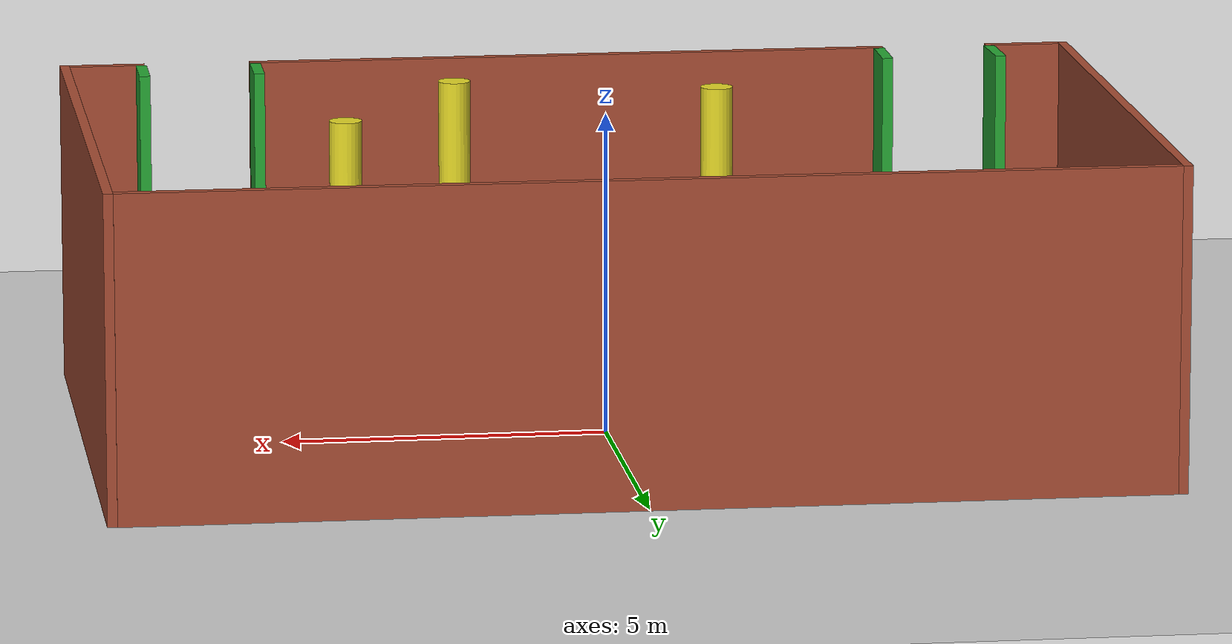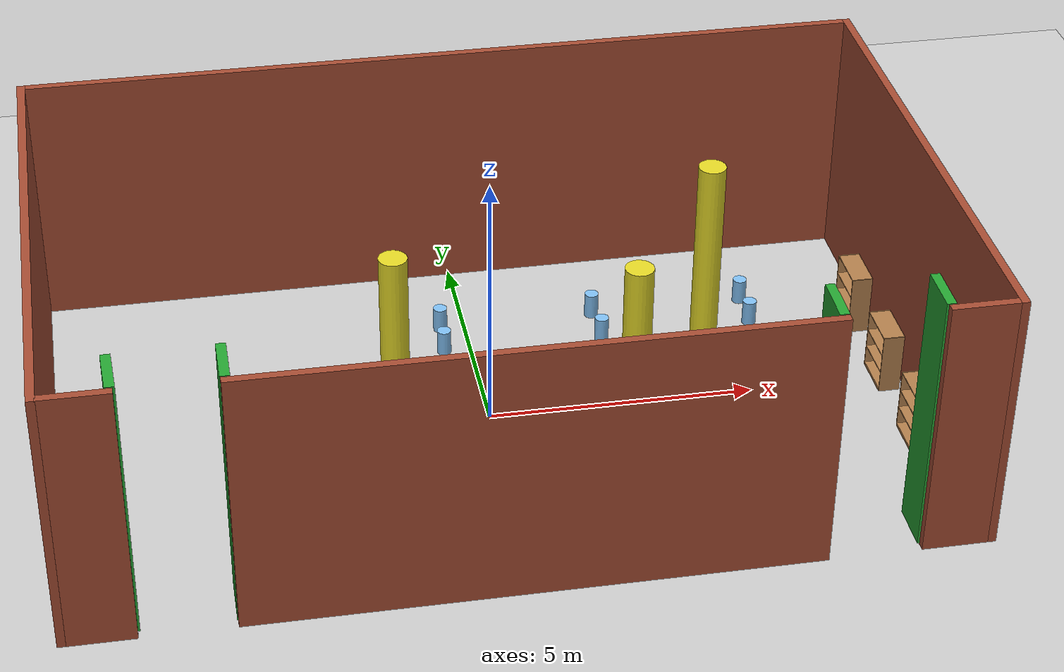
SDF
<sdf version="1.6">
 <world name="default">
  <light name="sun" type="directional">
   <pose>0 0 10 0 -0 0</pose>
   <diffuse>0.8 0.8 0.8 1</diffuse>
   <specular>0.2 0.2 0.2 1</specular>
   <attenuation>
    <range>1000</range>
    <constant>0.9</constant>
    <linear>0.01</linear>
    <quadratic>0.001</quadratic>
   </attenuation>
   <direction>-0.5 0.1 -0.9</direction>
  </light>
  <include><uri>model://asphalt_plane</uri></include>
  <gravity>0 0 -9.7925</gravity>
  <magnetic_field>6e-06 2.3e-05 -4.2e-05</magnetic_field>
  <atmosphere type="adiabatic"/>
  <physics name="default_physics" default="0" type="ode">
   <max_step_size>0.001</max_step_size>
   <real_time_factor>1</real_time_factor>
   <real_time_update_rate>1000</real_time_update_rate>
  </physics>
  <scene><ambient>0.4 0.4 0.4 1</ambient><background>0.6 0.6 0.9 1</background><shadows>1</shadows></scene>
  <audio><device>default</device></audio>
  <spherical_coordinates>
   <surface_model>EARTH_WGS84</surface_model>
   <latitude_deg>0</latitude_deg>
   <longitude_deg>0</longitude_deg>
   <elevation>0</elevation>
   <heading_deg>0</heading_deg>
  </spherical_coordinates>
  <model name="landing_pad_H"><include><uri>model://landing_H</uri><pose>0 0 0.05 0 0 0</pose></include></model>
  <model name="door">
   <link name="Door_0">
    <pose>-6.8 -4.45535 0 0 -0 1.60426</pose>
    <visual name="Door_0_Visual">
     <pose>0 0 2.5 0 -0 0</pose>
     <geometry><box><size>0.9 0.17 5</size></box></geometry>
     <material>
      <script><uri>file://media/materials/scripts/gazebo.material</uri><name>Gazebo/Green</name></script>
     </material>
    </visual>
    <collision name="Door_0_Collision">
     <pose>0 0 2.5 0 -0 0</pose>
     <geometry><box><size>0.9 0.17 5</size></box></geometry>
     <surface>
      <friction>
       <ode><mu>1</mu><mu2>1</mu2><fdir1>0 0 0</fdir1><slip1>0</slip1><slip2>0</slip2></ode>
       <torsional>
        <coefficient>1</coefficient>
        <patch_radius>0</patch_radius>
        <surface_radius>0</surface_radius>
        <use_patch_radius>1</use_patch_radius>
        <ode><slip>0</slip></ode>
       </torsional>
      </friction>
      <bounce><restitution_coefficient>0</restitution_coefficient><threshold>1e+06</threshold></bounce>
      <contact>
       <collide_without_contact>0</collide_without_contact>
       <collide_without_contact_bitmask>1</collide_without_contact_bitmask>
       <collide_bitmask>1</collide_bitmask>
       <ode>
        <soft_cfm>0</soft_cfm>
        <soft_erp>0.2</soft_erp>
        <kp>1e+13</kp>
        <kd>1</kd>
        <max_vel>0.01</max_vel>
        <min_depth>0</min_depth>
       </ode>
       <bullet>
        <split_impulse>1</split_impulse>
        <split_impulse_penetration_threshold>-0.01</split_impulse_penetration_threshold>
        <soft_cfm>0</soft_cfm>
        <soft_erp>0.2</soft_erp>
        <kp>1e+13</kp>
        <kd>1</kd>
       </bullet>
      </contact>
     </surface>
    </collision>
   </link>
   <link name="Door_1">
    <pose>-5 -4.45535 0 0 0 -1.57995</pose>
    <visual name="Door_1_Visual">
     <pose>0 0 2.5 0 -0 0</pose>
     <geometry><box><size>0.9 0.17 5</size></box></geometry>
     <material>
      <script><uri>file://media/materials/scripts/gazebo.material</uri><name>Gazebo/Green</name></script>
     </material>
    </visual>
    <collision name="Door_1_Collision">
     <pose>0 0 2.5 0 -0 0</pose>
     <geometry><box><size>0.9 0.17 5</size></box></geometry>
     <surface>
      <friction>
       <ode><mu>1</mu><mu2>1</mu2><fdir1>0 0 0</fdir1><slip1>0</slip1><slip2>0</slip2></ode>
       <torsional>
        <coefficient>1</coefficient>
        <patch_radius>0</patch_radius>
        <surface_radius>0</surface_radius>
        <use_patch_radius>1</use_patch_radius>
        <ode><slip>0</slip></ode>
       </torsional>
      </friction>
      <bounce><restitution_coefficient>0</restitution_coefficient><threshold>1e+06</threshold></bounce>
      <contact>
       <collide_without_contact>0</collide_without_contact>
       <collide_without_contact_bitmask>1</collide_without_contact_bitmask>
       <collide_bitmask>1</collide_bitmask>
       <ode>
        <soft_cfm>0</soft_cfm>
        <soft_erp>0.2</soft_erp>
        <kp>1e+13</kp>
        <kd>1</kd>
        <max_vel>0.01</max_vel>
        <min_depth>0</min_depth>
       </ode>
       <bullet>
        <split_impulse>1</split_impulse>
        <split_impulse_penetration_threshold>-0.01</split_impulse_penetration_threshold>
        <soft_cfm>0</soft_cfm>
        <soft_erp>0.2</soft_erp>
        <kp>1e+13</kp>
        <kd>1</kd>
       </bullet>
      </contact>
     </surface>
    </collision>
   </link>
   <link name="Door_2">
    <pose>5 -4.45535 0 0 -0 1.55702</pose>
    <visual name="Door_2_Visual">
     <pose>0 0 2.5 0 -0 0</pose>
     <geometry><box><size>0.9 0.17 5</size></box></geometry>
     <material>
      <script><uri>file://media/materials/scripts/gazebo.material</uri><name>Gazebo/Green</name></script>
     </material>
    </visual>
    <collision name="Door_2_Collision">
     <pose>0 0 2.5 0 -0 0</pose>
     <geometry><box><size>0.9 0.17 5</size></box></geometry>
     <surface>
      <friction>
       <ode><mu>1</mu><mu2>1</mu2><fdir1>0 0 0</fdir1><slip1>0</slip1><slip2>0</slip2></ode>
       <torsional>
        <coefficient>1</coefficient>
        <patch_radius>0</patch_radius>
        <surface_radius>0</surface_radius>
        <use_patch_radius>1</use_patch_radius>
        <ode><slip>0</slip></ode>
       </torsional>
      </friction>
      <bounce><restitution_coefficient>0</restitution_coefficient><threshold>1e+06</threshold></bounce>
      <contact>
       <collide_without_contact>0</collide_without_contact>
       <collide_without_contact_bitmask>1</collide_without_contact_bitmask>
       <collide_bitmask>1</collide_bitmask>
       <ode>
        <soft_cfm>0</soft_cfm>
        <soft_erp>0.2</soft_erp>
        <kp>1e+13</kp>
        <kd>1</kd>
        <max_vel>0.01</max_vel>
        <min_depth>0</min_depth>
       </ode>
       <bullet>
        <split_impulse>1</split_impulse>
        <split_impulse_penetration_threshold>-0.01</split_impulse_penetration_threshold>
        <soft_cfm>0</soft_cfm>
        <soft_erp>0.2</soft_erp>
        <kp>1e+13</kp>
        <kd>1</kd>
       </bullet>
      </contact>
     </surface>
    </collision>
   </link>
   <link name="Door_3">
    <pose>6.8 -4.45535 0 0 0 -1.58271</pose>
    <visual name="Door_3_Visual">
     <pose>0 0 2.5 0 -0 0</pose>
     <geometry><box><size>0.9 0.17 5</size></box></geometry>
     <material>
      <script><uri>file://media/materials/scripts/gazebo.material</uri><name>Gazebo/Green</name></script>
     </material>
    </visual>
    <collision name="Door_3_Collision">
     <pose>0 0 2.5 0 -0 0</pose>
     <geometry><box><size>0.9 0.17 5</size></box></geometry>
     <surface>
      <friction>
       <ode><mu>1</mu><mu2>1</mu2><fdir1>0 0 0</fdir1><slip1>0</slip1><slip2>0</slip2></ode>
       <torsional>
        <coefficient>1</coefficient>
        <patch_radius>0</patch_radius>
        <surface_radius>0</surface_radius>
        <use_patch_radius>1</use_patch_radius>
        <ode><slip>0</slip></ode>
       </torsional>
      </friction>
      <bounce><restitution_coefficient>0</restitution_coefficient><threshold>1e+06</threshold></bounce>
      <contact>
       <collide_without_contact>0</collide_without_contact>
       <collide_without_contact_bitmask>1</collide_without_contact_bitmask>
       <collide_bitmask>1</collide_bitmask>
       <ode>
        <soft_cfm>0</soft_cfm>
        <soft_erp>0.2</soft_erp>
        <kp>1e+13</kp>
        <kd>1</kd>
        <max_vel>0.01</max_vel>
        <min_depth>0</min_depth>
       </ode>
       <bullet>
        <split_impulse>1</split_impulse>
        <split_impulse_penetration_threshold>-0.01</split_impulse_penetration_threshold>
        <soft_cfm>0</soft_cfm>
        <soft_erp>0.2</soft_erp>
        <kp>1e+13</kp>
        <kd>1</kd>
       </bullet>
      </contact>
     </surface>
    </collision>
   </link>
   <static>1</static>
   <pose>-0.036086 0.007651 0 0 0 0</pose>
  </model>
  <model name="wall">
   <link name="Wall_front">
    <pose>8 -0.005352 0 0 -0 1.5708</pose>
    <visual name="Wall_front_Visual">
     <pose>0 0 2.5 0 -0 0</pose>
     <geometry><box><size>10.15 0.15 5</size></box></geometry>
     <material>
      <script><uri>file://media/materials/scripts/gazebo.material</uri><name>Gazebo/Bricks</name></script>
      <ambient>1 1 1 1</ambient>
     </material>
     <meta><layer>0</layer></meta>
    </visual>
    <collision name="Wall_front_Collision">
     <pose>0 0 2.5 0 -0 0</pose>
     <geometry><box><size>10.15 0.15 5</size></box></geometry>
     <surface>
      <friction>
       <ode><mu>1</mu><mu2>1</mu2><fdir1>0 0 0</fdir1><slip1>0</slip1><slip2>0</slip2></ode>
       <torsional>
        <coefficient>1</coefficient>
        <patch_radius>0</patch_radius>
        <surface_radius>0</surface_radius>
        <use_patch_radius>1</use_patch_radius>
        <ode><slip>0</slip></ode>
       </torsional>
      </friction>
      <bounce><restitution_coefficient>0</restitution_coefficient><threshold>1e+06</threshold></bounce>
      <contact>
       <collide_without_contact>0</collide_without_contact>
       <collide_without_contact_bitmask>1</collide_without_contact_bitmask>
       <collide_bitmask>1</collide_bitmask>
       <ode>
        <soft_cfm>0</soft_cfm>
        <soft_erp>0.2</soft_erp>
        <kp>1e+13</kp>
        <kd>1</kd>
        <max_vel>0.01</max_vel>
        <min_depth>0</min_depth>
       </ode>
       <bullet>
        <split_impulse>1</split_impulse>
        <split_impulse_penetration_threshold>-0.01</split_impulse_penetration_threshold>
        <soft_cfm>0</soft_cfm>
        <soft_erp>0.2</soft_erp>
        <kp>1e+13</kp>
        <kd>1</kd>
       </bullet>
      </contact>
     </surface>
    </collision>
   </link>
   <link name="Wall_back">
    <pose>-8 -0.005353 0 0 -0 1.5708</pose>
    <inertial>
     <mass>1</mass>
     <inertia><ixx>1</ixx><ixy>0</ixy><ixz>0</ixz><iyy>1</iyy><iyz>0</iyz><izz>1</izz></inertia>
    </inertial>
    <visual name="Wall_back_Visual">
     <pose>0 0 2.5 0 -0 0</pose>
     <geometry><box><size>10.15 0.15 5</size></box></geometry>
     <material>
      <script><uri>file://media/materials/scripts/gazebo.material</uri><name>Gazebo/Bricks</name></script>
      <ambient>1 1 1 1</ambient>
      <shader type="vertex"><normal_map>__default__</normal_map></shader>
     </material>
     <meta><layer>0</layer></meta>
    </visual>
    <collision name="Wall_back_Collision">
     <pose>0 0 2.5 0 -0 0</pose>
     <geometry><box><size>10.15 0.15 5</size></box></geometry>
     <surface>
      <friction>
       <ode><mu>1</mu><mu2>1</mu2><fdir1>0 0 0</fdir1><slip1>0</slip1><slip2>0</slip2></ode>
       <torsional>
        <coefficient>1</coefficient>
        <patch_radius>0</patch_radius>
        <surface_radius>0</surface_radius>
        <use_patch_radius>1</use_patch_radius>
        <ode><slip>0</slip></ode>
       </torsional>
      </friction>
      <bounce><restitution_coefficient>0</restitution_coefficient><threshold>1e+06</threshold></bounce>
      <contact>
       <collide_without_contact>0</collide_without_contact>
       <collide_without_contact_bitmask>1</collide_without_contact_bitmask>
       <collide_bitmask>1</collide_bitmask>
       <ode>
        <soft_cfm>0</soft_cfm>
        <soft_erp>0.2</soft_erp>
        <kp>1e+13</kp>
        <kd>1</kd>
        <max_vel>0.01</max_vel>
        <min_depth>0</min_depth>
       </ode>
       <bullet>
        <split_impulse>1</split_impulse>
        <split_impulse_penetration_threshold>-0.01</split_impulse_penetration_threshold>
        <soft_cfm>0</soft_cfm>
        <soft_erp>0.2</soft_erp>
        <kp>1e+13</kp>
        <kd>1</kd>
       </bullet>
      </contact>
     </surface>
    </collision>
   </link>
   <link name="Wall_left">
    <pose>0 5 0 0 -0 0</pose>
    <inertial>
     <inertia><ixx>0</ixx><ixy>0</ixy><ixz>0</ixz><iyy>0</iyy><iyz>0</iyz><izz>0</izz></inertia>
     <mass>0</mass>
    </inertial>
    <visual name="Wall_left_Visual">
     <pose>0 0 2.5 0 -0 0</pose>
     <geometry><box><size>15.85 0.15 5</size></box></geometry>
     <material>
      <script><uri>file://media/materials/scripts/gazebo.material</uri><name>Gazebo/Bricks</name></script>
      <ambient>1 1 1 1</ambient>
     </material>
     <meta><layer>0</layer></meta>
    </visual>
    <collision name="Wall_left_Collision">
     <pose>0 0 2.5 0 -0 0</pose>
     <geometry><box><size>15.85 0.15 5</size></box></geometry>
     <surface>
      <friction>
       <ode><mu>1</mu><mu2>1</mu2><fdir1>0 0 0</fdir1><slip1>0</slip1><slip2>0</slip2></ode>
       <torsional>
        <coefficient>1</coefficient>
        <patch_radius>0</patch_radius>
        <surface_radius>0</surface_radius>
        <use_patch_radius>1</use_patch_radius>
        <ode><slip>0</slip></ode>
       </torsional>
      </friction>
      <bounce><restitution_coefficient>0</restitution_coefficient><threshold>1e+06</threshold></bounce>
      <contact>
       <collide_without_contact>0</collide_without_contact>
       <collide_without_contact_bitmask>1</collide_without_contact_bitmask>
       <collide_bitmask>1</collide_bitmask>
       <ode>
        <soft_cfm>0</soft_cfm>
        <soft_erp>0.2</soft_erp>
        <kp>1e+13</kp>
        <kd>1</kd>
        <max_vel>0.01</max_vel>
        <min_depth>0</min_depth>
       </ode>
       <bullet>
        <split_impulse>1</split_impulse>
        <split_impulse_penetration_threshold>-0.01</split_impulse_penetration_threshold>
        <soft_cfm>0</soft_cfm>
        <soft_erp>0.2</soft_erp>
        <kp>1e+13</kp>
        <kd>1</kd>
       </bullet>
      </contact>
     </surface>
    </collision>
   </link>
   <link name="Wall_8">
    <pose>0 -5.00535 0 0 -0 0</pose>
    <visual name="Wall_8_Visual">
     <pose>0 0 2.5 0 -0 0</pose>
     <geometry><box><size>10.15 0.15 5</size></box></geometry>
     <material>
      <script><uri>file://media/materials/scripts/gazebo.material</uri><name>Gazebo/Bricks</name></script>
      <ambient>1 1 1 1</ambient>
     </material>
     <meta><layer>0</layer></meta>
    </visual>
    <collision name="Wall_8_Collision">
     <pose>0 0 2.5 0 -0 0</pose>
     <geometry><box><size>10.15 0.15 5</size></box></geometry>
     <surface>
      <friction>
       <ode><mu>1</mu><mu2>1</mu2><fdir1>0 0 0</fdir1><slip1>0</slip1><slip2>0</slip2></ode>
       <torsional>
        <coefficient>1</coefficient>
        <patch_radius>0</patch_radius>
        <surface_radius>0</surface_radius>
        <use_patch_radius>1</use_patch_radius>
        <ode><slip>0</slip></ode>
       </torsional>
      </friction>
      <bounce><restitution_coefficient>0</restitution_coefficient><threshold>1e+06</threshold></bounce>
      <contact>
       <collide_without_contact>0</collide_without_contact>
       <collide_without_contact_bitmask>1</collide_without_contact_bitmask>
       <collide_bitmask>1</collide_bitmask>
       <ode>
        <soft_cfm>0</soft_cfm>
        <soft_erp>0.2</soft_erp>
        <kp>1e+13</kp>
        <kd>1</kd>
        <max_vel>0.01</max_vel>
        <min_depth>0</min_depth>
       </ode>
       <bullet>
        <split_impulse>1</split_impulse>
        <split_impulse_penetration_threshold>-0.01</split_impulse_penetration_threshold>
        <soft_cfm>0</soft_cfm>
        <soft_erp>0.2</soft_erp>
        <kp>1e+13</kp>
        <kd>1</kd>
       </bullet>
      </contact>
     </surface>
    </collision>
   </link>
   <link name="Wall_2">
    <pose>-7.34 -5.00535 0 0 -0 0</pose>
    <visual name="Wall_10_Visual">
     <pose>0 0 2.5 0 -0 0</pose>
     <geometry><box><size>1.2 0.15 5</size></box></geometry>
     <material>
      <script><uri>file://media/materials/scripts/gazebo.material</uri><name>Gazebo/Bricks</name></script>
      <ambient>1 1 1 1</ambient>
     </material>
     <meta><layer>0</layer></meta>
    </visual>
    <collision name="Wall_10_Collision">
     <pose>0 0 2.5 0 -0 0</pose>
     <geometry><box><size>1.2 0.15 5</size></box></geometry>
     <surface>
      <friction>
       <ode><mu>1</mu><mu2>1</mu2><fdir1>0 0 0</fdir1><slip1>0</slip1><slip2>0</slip2></ode>
       <torsional>
        <coefficient>1</coefficient>
        <patch_radius>0</patch_radius>
        <surface_radius>0</surface_radius>
        <use_patch_radius>1</use_patch_radius>
        <ode><slip>0</slip></ode>
       </torsional>
      </friction>
      <bounce><restitution_coefficient>0</restitution_coefficient><threshold>1e+06</threshold></bounce>
      <contact>
       <collide_without_contact>0</collide_without_contact>
       <collide_without_contact_bitmask>1</collide_without_contact_bitmask>
       <collide_bitmask>1</collide_bitmask>
       <ode>
        <soft_cfm>0</soft_cfm>
        <soft_erp>0.2</soft_erp>
        <kp>1e+13</kp>
        <kd>1</kd>
        <max_vel>0.01</max_vel>
        <min_depth>0</min_depth>
       </ode>
       <bullet>
        <split_impulse>1</split_impulse>
        <split_impulse_penetration_threshold>-0.01</split_impulse_penetration_threshold>
        <soft_cfm>0</soft_cfm>
        <soft_erp>0.2</soft_erp>
        <kp>1e+13</kp>
        <kd>1</kd>
       </bullet>
      </contact>
     </surface>
    </collision>
   </link>
   <link name="Wall_10">
    <pose>7.34 -5.00535 0 0 -0 0</pose>
    <visual name="Wall_10_Visual">
     <pose>0 0 2.5 0 -0 0</pose>
     <geometry><box><size>1.2 0.15 5</size></box></geometry>
     <material>
      <script><uri>file://media/materials/scripts/gazebo.material</uri><name>Gazebo/Bricks</name></script>
      <ambient>1 1 1 1</ambient>
     </material>
     <meta><layer>0</layer></meta>
    </visual>
    <collision name="Wall_10_Collision">
     <pose>0 0 2.5 0 -0 0</pose>
     <geometry><box><size>1.2 0.15 5</size></box></geometry>
     <surface>
      <friction>
       <ode><mu>1</mu><mu2>1</mu2><fdir1>0 0 0</fdir1><slip1>0</slip1><slip2>0</slip2></ode>
       <torsional>
        <coefficient>1</coefficient>
        <patch_radius>0</patch_radius>
        <surface_radius>0</surface_radius>
        <use_patch_radius>1</use_patch_radius>
        <ode><slip>0</slip></ode>
       </torsional>
      </friction>
      <bounce><restitution_coefficient>0</restitution_coefficient><threshold>1e+06</threshold></bounce>
      <contact>
       <collide_without_contact>0</collide_without_contact>
       <collide_without_contact_bitmask>1</collide_without_contact_bitmask>
       <collide_bitmask>1</collide_bitmask>
       <ode>
        <soft_cfm>0</soft_cfm>
        <soft_erp>0.2</soft_erp>
        <kp>1e+13</kp>
        <kd>1</kd>
        <max_vel>0.01</max_vel>
        <min_depth>0</min_depth>
       </ode>
       <bullet>
        <split_impulse>1</split_impulse>
        <split_impulse_penetration_threshold>-0.01</split_impulse_penetration_threshold>
        <soft_cfm>0</soft_cfm>
        <soft_erp>0.2</soft_erp>
        <kp>1e+13</kp>
        <kd>1</kd>
       </bullet>
      </contact>
     </surface>
    </collision>
   </link>
   <static>1</static>
   <pose>-0.036086 0.007651 0 0 -0 0</pose>
  </model>
  <model name="chair">
   <link name="link_13">
    <inertial>
     <mass>0.0313183</mass>
     <inertia>
      <ixx>0.000638939</ixx>
      <ixy>0</ixy>
      <ixz>0</ixz>
      <iyy>0.000638939</iyy>
      <iyz>0</iyz>
      <izz>0.0002788</izz>
     </inertia>
    </inertial>
    <pose>-0.431774 3 0 0 -0 0</pose>
    <visual name="visual">
     <pose>0 0 0.25 0 -0 0</pose>
     <geometry><cylinder><radius>0.133433</radius><length>0.5</length></cylinder></geometry>
     <material>
      <lighting>1</lighting>
      <script><uri>file://media/materials/scripts/gazebo.material</uri><name>Gazebo/SkyBlue</name></script>
     </material>
    </visual>
    <collision name="collision">
     <pose>0 0 0.25 0 -0 0</pose>
     <geometry><cylinder><radius>0.133433</radius><length>0.5</length></cylinder></geometry>
     <surface>
      <friction>
       <ode><mu>1</mu><mu2>1</mu2><fdir1>0 0 0</fdir1><slip1>0</slip1><slip2>0</slip2></ode>
       <torsional>
        <coefficient>1</coefficient>
        <patch_radius>0</patch_radius>
        <surface_radius>0</surface_radius>
        <use_patch_radius>1</use_patch_radius>
        <ode><slip>0</slip></ode>
       </torsional>
      </friction>
      <bounce><restitution_coefficient>0</restitution_coefficient><threshold>1e+06</threshold></bounce>
      <contact>
       <collide_without_contact>0</collide_without_contact>
       <collide_without_contact_bitmask>1</collide_without_contact_bitmask>
       <collide_bitmask>1</collide_bitmask>
       <ode>
        <soft_cfm>0</soft_cfm>
        <soft_erp>0.2</soft_erp>
        <kp>1e+13</kp>
        <kd>1</kd>
        <max_vel>0.01</max_vel>
        <min_depth>0</min_depth>
       </ode>
       <bullet>
        <split_impulse>1</split_impulse>
        <split_impulse_penetration_threshold>-0.01</split_impulse_penetration_threshold>
        <soft_cfm>0</soft_cfm>
        <soft_erp>0.2</soft_erp>
        <kp>1e+13</kp>
        <kd>1</kd>
       </bullet>
      </contact>
     </surface>
    </collision>
   </link>
   <link name="link_13_clone">
    <inertial>
     <mass>0.0313183</mass>
     <inertia>
      <ixx>0.000638939</ixx>
      <ixy>0</ixy>
      <ixz>0</ixz>
      <iyy>0.000638939</iyy>
      <iyz>0</iyz>
      <izz>0.0002788</izz>
     </inertia>
    </inertial>
    <pose>-0.473274 2.22757 0 0 0 0</pose>
    <visual name="visual">
     <pose>0 0 0.25 0 -0 0</pose>
     <geometry><cylinder><radius>0.133433</radius><length>0.5</length></cylinder></geometry>
     <material>
      <lighting>1</lighting>
      <script><uri>file://media/materials/scripts/gazebo.material</uri><name>Gazebo/SkyBlue</name></script>
      <shader type="pixel"/>
     </material>
    </visual>
    <collision name="collision">
     <pose>0 0 0.25 0 -0 0</pose>
     <geometry><cylinder><radius>0.133433</radius><length>0.5</length></cylinder></geometry>
     <surface>
      <friction>
       <ode><mu>1</mu><mu2>1</mu2><fdir1>0 0 0</fdir1><slip1>0</slip1><slip2>0</slip2></ode>
       <torsional>
        <coefficient>1</coefficient>
        <patch_radius>0</patch_radius>
        <surface_radius>0</surface_radius>
        <use_patch_radius>1</use_patch_radius>
        <ode><slip>0</slip></ode>
       </torsional>
      </friction>
      <bounce><restitution_coefficient>0</restitution_coefficient><threshold>1e+06</threshold></bounce>
      <contact>
       <collide_without_contact>0</collide_without_contact>
       <collide_without_contact_bitmask>1</collide_without_contact_bitmask>
       <collide_bitmask>1</collide_bitmask>
       <ode>
        <soft_cfm>0</soft_cfm>
        <soft_erp>0.2</soft_erp>
        <kp>1e+13</kp>
        <kd>1</kd>
        <max_vel>0.01</max_vel>
        <min_depth>0</min_depth>
       </ode>
       <bullet>
        <split_impulse>1</split_impulse>
        <split_impulse_penetration_threshold>-0.01</split_impulse_penetration_threshold>
        <soft_cfm>0</soft_cfm>
        <soft_erp>0.2</soft_erp>
        <kp>1e+13</kp>
        <kd>1</kd>
       </bullet>
      </contact>
     </surface>
    </collision>
   </link>
   <link name="link_13_clone_0">
    <inertial>
     <mass>0.0313183</mass>
     <inertia>
      <ixx>0.000638939</ixx>
      <ixy>0</ixy>
      <ixz>0</ixz>
      <iyy>0.000638939</iyy>
      <iyz>0</iyz>
      <izz>0.0002788</izz>
     </inertia>
    </inertial>
    <pose>2.58171 3 0 0 0 0</pose>
    <visual name="visual">
     <pose>0 0 0.25 0 -0 0</pose>
     <geometry><cylinder><radius>0.133433</radius><length>0.5</length></cylinder></geometry>
     <material>
      <lighting>1</lighting>
      <script><uri>file://media/materials/scripts/gazebo.material</uri><name>Gazebo/SkyBlue</name></script>
      <shader type="pixel"/>
     </material>
    </visual>
    <collision name="collision">
     <pose>0 0 0.25 0 -0 0</pose>
     <geometry><cylinder><radius>0.133433</radius><length>0.5</length></cylinder></geometry>
     <surface>
      <friction>
       <ode><mu>1</mu><mu2>1</mu2><fdir1>0 0 0</fdir1><slip1>0</slip1><slip2>0</slip2></ode>
       <torsional>
        <coefficient>1</coefficient>
        <patch_radius>0</patch_radius>
        <surface_radius>0</surface_radius>
        <use_patch_radius>1</use_patch_radius>
        <ode><slip>0</slip></ode>
       </torsional>
      </friction>
      <bounce><restitution_coefficient>0</restitution_coefficient><threshold>1e+06</threshold></bounce>
      <contact>
       <collide_without_contact>0</collide_without_contact>
       <collide_without_contact_bitmask>1</collide_without_contact_bitmask>
       <collide_bitmask>1</collide_bitmask>
       <ode>
        <soft_cfm>0</soft_cfm>
        <soft_erp>0.2</soft_erp>
        <kp>1e+13</kp>
        <kd>1</kd>
        <max_vel>0.01</max_vel>
        <min_depth>0</min_depth>
       </ode>
       <bullet>
        <split_impulse>1</split_impulse>
        <split_impulse_penetration_threshold>-0.01</split_impulse_penetration_threshold>
        <soft_cfm>0</soft_cfm>
        <soft_erp>0.2</soft_erp>
        <kp>1e+13</kp>
        <kd>1</kd>
       </bullet>
      </contact>
     </surface>
    </collision>
   </link>
   <link name="link_13_clone_1">
    <inertial>
     <mass>0.0313183</mass>
     <inertia>
      <ixx>0.00063894</ixx>
      <ixy>0</ixy>
      <ixz>0</ixz>
      <iyy>0.00063894</iyy>
      <iyz>0</iyz>
      <izz>0.0002788</izz>
     </inertia>
    </inertial>
    <pose>2.6065 2.13919 0 0 0 0</pose>
    <visual name="visual">
     <pose>0 0 0.25 0 -0 0</pose>
     <geometry><cylinder><radius>0.133433</radius><length>0.5</length></cylinder></geometry>
     <material>
      <lighting>1</lighting>
      <script><uri>file://media/materials/scripts/gazebo.material</uri><name>Gazebo/SkyBlue</name></script>
      <shader type="pixel"/>
     </material>
    </visual>
    <collision name="collision">
     <pose>0 0 0.25 0 -0 0</pose>
     <geometry><cylinder><radius>0.133433</radius><length>0.5</length></cylinder></geometry>
     <surface>
      <friction>
       <ode><mu>1</mu><mu2>1</mu2><fdir1>0 0 0</fdir1><slip1>0</slip1><slip2>0</slip2></ode>
       <torsional>
        <coefficient>1</coefficient>
        <patch_radius>0</patch_radius>
        <surface_radius>0</surface_radius>
        <use_patch_radius>1</use_patch_radius>
        <ode><slip>0</slip></ode>
       </torsional>
      </friction>
      <bounce><restitution_coefficient>0</restitution_coefficient><threshold>1e+06</threshold></bounce>
      <contact>
       <collide_without_contact>0</collide_without_contact>
       <collide_without_contact_bitmask>1</collide_without_contact_bitmask>
       <collide_bitmask>1</collide_bitmask>
       <ode>
        <soft_cfm>0</soft_cfm>
        <soft_erp>0.2</soft_erp>
        <kp>1e+13</kp>
        <kd>1</kd>
        <max_vel>0.01</max_vel>
        <min_depth>0</min_depth>
       </ode>
       <bullet>
        <split_impulse>1</split_impulse>
        <split_impulse_penetration_threshold>-0.01</split_impulse_penetration_threshold>
        <soft_cfm>0</soft_cfm>
        <soft_erp>0.2</soft_erp>
        <kp>1e+13</kp>
        <kd>1</kd>
       </bullet>
      </contact>
     </surface>
    </collision>
   </link>
   <link name="link_13_clone_2">
    <inertial>
     <mass>0.0313183</mass>
     <inertia>
      <ixx>0.000638939</ixx>
      <ixy>0</ixy>
      <ixz>0</ixz>
      <iyy>0.000638939</iyy>
      <iyz>0</iyz>
      <izz>0.0002788</izz>
     </inertia>
    </inertial>
    <pose>5.58438 3 0 0 0 0</pose>
    <visual name="visual">
     <pose>0 0 0.25 0 -0 0</pose>
     <geometry><cylinder><radius>0.133433</radius><length>0.5</length></cylinder></geometry>
     <material>
      <lighting>1</lighting>
      <script><uri>file://media/materials/scripts/gazebo.material</uri><name>Gazebo/SkyBlue</name></script>
      <shader type="pixel"/>
     </material>
    </visual>
    <collision name="collision">
     <pose>0 0 0.25 0 -0 0</pose>
     <geometry><cylinder><radius>0.133433</radius><length>0.5</length></cylinder></geometry>
     <surface>
      <friction>
       <ode><mu>1</mu><mu2>1</mu2><fdir1>0 0 0</fdir1><slip1>0</slip1><slip2>0</slip2></ode>
       <torsional>
        <coefficient>1</coefficient>
        <patch_radius>0</patch_radius>
        <surface_radius>0</surface_radius>
        <use_patch_radius>1</use_patch_radius>
        <ode><slip>0</slip></ode>
       </torsional>
      </friction>
      <bounce><restitution_coefficient>0</restitution_coefficient><threshold>1e+06</threshold></bounce>
      <contact>
       <collide_without_contact>0</collide_without_contact>
       <collide_without_contact_bitmask>1</collide_without_contact_bitmask>
       <collide_bitmask>1</collide_bitmask>
       <ode>
        <soft_cfm>0</soft_cfm>
        <soft_erp>0.2</soft_erp>
        <kp>1e+13</kp>
        <kd>1</kd>
        <max_vel>0.01</max_vel>
        <min_depth>0</min_depth>
       </ode>
       <bullet>
        <split_impulse>1</split_impulse>
        <split_impulse_penetration_threshold>-0.01</split_impulse_penetration_threshold>
        <soft_cfm>0</soft_cfm>
        <soft_erp>0.2</soft_erp>
        <kp>1e+13</kp>
        <kd>1</kd>
       </bullet>
      </contact>
     </surface>
    </collision>
   </link>
   <link name="link_13_clone_3">
    <inertial>
     <mass>0.0313183</mass>
     <inertia>
      <ixx>0.000638939</ixx>
      <ixy>0</ixy>
      <ixz>0</ixz>
      <iyy>0.000638939</iyy>
      <iyz>0</iyz>
      <izz>0.0002788</izz>
     </inertia>
    </inertial>
    <pose>5.58067 2.21897 0 0 0 0</pose>
    <visual name="visual">
     <pose>0 0 0.25 0 -0 0</pose>
     <geometry><cylinder><radius>0.133433</radius><length>0.5</length></cylinder></geometry>
     <material>
      <lighting>1</lighting>
      <script><uri>file://media/materials/scripts/gazebo.material</uri><name>Gazebo/SkyBlue</name></script>
      <shader type="pixel"/>
     </material>
    </visual>
    <collision name="collision">
     <pose>0 0 0.25 0 -0 0</pose>
     <geometry><cylinder><radius>0.133433</radius><length>0.5</length></cylinder></geometry>
     <surface>
      <friction>
       <ode><mu>1</mu><mu2>1</mu2><fdir1>0 0 0</fdir1><slip1>0</slip1><slip2>0</slip2></ode>
       <torsional>
        <coefficient>1</coefficient>
        <patch_radius>0</patch_radius>
        <surface_radius>0</surface_radius>
        <use_patch_radius>1</use_patch_radius>
        <ode><slip>0</slip></ode>
       </torsional>
      </friction>
      <bounce><restitution_coefficient>0</restitution_coefficient><threshold>1e+06</threshold></bounce>
      <contact>
       <collide_without_contact>0</collide_without_contact>
       <collide_without_contact_bitmask>1</collide_without_contact_bitmask>
       <collide_bitmask>1</collide_bitmask>
       <ode>
        <soft_cfm>0</soft_cfm>
        <soft_erp>0.2</soft_erp>
        <kp>1e+13</kp>
        <kd>1</kd>
        <max_vel>0.01</max_vel>
        <min_depth>0</min_depth>
       </ode>
       <bullet>
        <split_impulse>1</split_impulse>
        <split_impulse_penetration_threshold>-0.01</split_impulse_penetration_threshold>
        <soft_cfm>0</soft_cfm>
        <soft_erp>0.2</soft_erp>
        <kp>1e+13</kp>
        <kd>1</kd>
       </bullet>
      </contact>
     </surface>
    </collision>
   </link>
   <static>1</static>
   <pose>-0.036086 0.007651 0 0 -0 0</pose>
  </model>
  <model name="cylinder0">
   <include><uri>model://obs_cylinder_large</uri><pose>-2 -2 0 0 0 0</pose></include>
  </model>
  <model name="cylinder1">
   <include><uri>model://obs_cylinder_large</uri><pose>4 0 0 0 0 0</pose></include>
  </model>
  <model name="cylinder2">
   <include><uri>model://obs_cylinder_large</uri><pose>2 -3 0 0 0 0</pose></include>
  </model>
  <model name="bookshelf">
   <model name="bookshelf">
    <static>1</static>
    <link name="link">
     <inertial><mass>1</mass></inertial>
     <collision name="back">
      <pose>0 0.005 0.6 0 -0 0</pose>
      <geometry><box><size>0.9 0.01 1.2</size></box></geometry>
     </collision>
     <visual name="visual1">
      <pose>0 0.005 0.6 0 -0 0</pose>
      <geometry><box><size>0.9 0.01 1.2</size></box></geometry>
      <material>
       <script><uri>file://media/materials/scripts/gazebo.material</uri><name>Gazebo/Wood</name></script>
      </material>
     </visual>
     <collision name="left_side">
      <pose>0.45 -0.195 0.6 0 -0 0</pose>
      <geometry><box><size>0.02 0.4 1.2</size></box></geometry>
     </collision>
     <visual name="visual2">
      <pose>0.45 -0.195 0.6 0 -0 0</pose>
      <geometry><box><size>0.02 0.4 1.2</size></box></geometry>
      <material>
       <script><uri>file://media/materials/scripts/gazebo.material</uri><name>Gazebo/Wood</name></script>
      </material>
     </visual>
     <collision name="right_side">
      <pose>-0.45 -0.195 0.6 0 -0 0</pose>
      <geometry><box><size>0.02 0.4 1.2</size></box></geometry>
     </collision>
     <visual name="visual3">
      <pose>-0.45 -0.195 0.6 0 -0 0</pose>
      <geometry><box><size>0.02 0.4 1.2</size></box></geometry>
      <material>
       <script><uri>file://media/materials/scripts/gazebo.material</uri><name>Gazebo/Wood</name></script>
      </material>
     </visual>
     <collision name="bottom">
      <pose>0 -0.195 0.03 0 -0 0</pose>
      <geometry><box><size>0.88 0.4 0.06</size></box></geometry>
     </collision>
     <visual name="visual4">
      <pose>0 -0.195 0.03 0 -0 0</pose>
      <geometry><box><size>0.88 0.4 0.06</size></box></geometry>
      <material>
       <script><uri>file://media/materials/scripts/gazebo.material</uri><name>Gazebo/Wood</name></script>
      </material>
     </visual>
     <collision name="top">
      <pose>0 -0.195 1.19 0 -0 0</pose>
      <geometry><box><size>0.88 0.4 0.02</size></box></geometry>
     </collision>
     <visual name="visual5">
      <pose>0 -0.195 1.19 0 -0 0</pose>
      <geometry><box><size>0.88 0.4 0.02</size></box></geometry>
      <material>
       <script><uri>file://media/materials/scripts/gazebo.material</uri><name>Gazebo/Wood</name></script>
      </material>
     </visual>
     <collision name="low_shelf">
      <pose>0 -0.195 0.43 0 -0 0</pose>
      <geometry><box><size>0.88 0.4 0.02</size></box></geometry>
     </collision>
     <visual name="visual6">
      <pose>0 -0.195 0.43 0 -0 0</pose>
      <geometry><box><size>0.88 0.4 0.02</size></box></geometry>
      <material>
       <script><uri>file://media/materials/scripts/gazebo.material</uri><name>Gazebo/Wood</name></script>
      </material>
     </visual>
     <collision name="high_shelf">
      <pose>0 -0.195 0.8 0 -0 0</pose>
      <geometry><box><size>0.88 0.4 0.02</size></box></geometry>
     </collision>
     <visual name="visual7">
      <pose>0 -0.195 0.8 0 -0 0</pose>
      <geometry><box><size>0.88 0.4 0.02</size></box></geometry>
      <material>
       <script><uri>file://media/materials/scripts/gazebo.material</uri><name>Gazebo/Wood</name></script>
      </material>
     </visual>
    </link>
    <pose>7.8 -2 0 0 0 -1.57013</pose>
   </model>
   <model name="bookshelf_0">
    <static>1</static>
    <link name="link">
     <inertial><mass>1</mass></inertial>
     <collision name="back">
      <pose>0 0.005 0.6 0 -0 0</pose>
      <geometry><box><size>0.9 0.01 1.2</size></box></geometry>
     </collision>
     <visual name="visual1">
      <pose>0 0.005 0.6 0 -0 0</pose>
      <geometry><box><size>0.9 0.01 1.2</size></box></geometry>
      <material>
       <script><uri>file://media/materials/scripts/gazebo.material</uri><name>Gazebo/Wood</name></script>
      </material>
     </visual>
     <collision name="left_side">
      <pose>0.45 -0.195 0.6 0 -0 0</pose>
      <geometry><box><size>0.02 0.4 1.2</size></box></geometry>
     </collision>
     <visual name="visual2">
      <pose>0.45 -0.195 0.6 0 -0 0</pose>
      <geometry><box><size>0.02 0.4 1.2</size></box></geometry>
      <material>
       <script><uri>file://media/materials/scripts/gazebo.material</uri><name>Gazebo/Wood</name></script>
      </material>
     </visual>
     <collision name="right_side">
      <pose>-0.45 -0.195 0.6 0 -0 0</pose>
      <geometry><box><size>0.02 0.4 1.2</size></box></geometry>
     </collision>
     <visual name="visual3">
      <pose>-0.45 -0.195 0.6 0 -0 0</pose>
      <geometry><box><size>0.02 0.4 1.2</size></box></geometry>
      <material>
       <script><uri>file://media/materials/scripts/gazebo.material</uri><name>Gazebo/Wood</name></script>
      </material>
     </visual>
     <collision name="bottom">
      <pose>0 -0.195 0.03 0 -0 0</pose>
      <geometry><box><size>0.88 0.4 0.06</size></box></geometry>
     </collision>
     <visual name="visual4">
      <pose>0 -0.195 0.03 0 -0 0</pose>
      <geometry><box><size>0.88 0.4 0.06</size></box></geometry>
      <material>
       <script><uri>file://media/materials/scripts/gazebo.material</uri><name>Gazebo/Wood</name></script>
      </material>
     </visual>
     <collision name="top">
      <pose>0 -0.195 1.19 0 -0 0</pose>
      <geometry><box><size>0.88 0.4 0.02</size></box></geometry>
     </collision>
     <visual name="visual5">
      <pose>0 -0.195 1.19 0 -0 0</pose>
      <geometry><box><size>0.88 0.4 0.02</size></box></geometry>
      <material>
       <script><uri>file://media/materials/scripts/gazebo.material</uri><name>Gazebo/Wood</name></script>
      </material>
     </visual>
     <collision name="low_shelf">
      <pose>0 -0.195 0.43 0 -0 0</pose>
      <geometry><box><size>0.88 0.4 0.02</size></box></geometry>
     </collision>
     <visual name="visual6">
      <pose>0 -0.195 0.43 0 -0 0</pose>
      <geometry><box><size>0.88 0.4 0.02</size></box></geometry>
      <material>
       <script><uri>file://media/materials/scripts/gazebo.material</uri><name>Gazebo/Wood</name></script>
      </material>
     </visual>
     <collision name="high_shelf">
      <pose>0 -0.195 0.8 0 -0 0</pose>
      <geometry><box><size>0.88 0.4 0.02</size></box></geometry>
     </collision>
     <visual name="visual7">
      <pose>0 -0.195 0.8 0 -0 0</pose>
      <geometry><box><size>0.88 0.4 0.02</size></box></geometry>
      <material>
       <script><uri>file://media/materials/scripts/gazebo.material</uri><name>Gazebo/Wood</name></script>
      </material>
     </visual>
    </link>
    <pose>7.8 0 0 0 0 -1.57013</pose>
   </model>
   <model name="bookshelf_1">
    <static>1</static>
    <link name="link">
     <inertial><mass>1</mass></inertial>
     <collision name="back">
      <pose>0 0.005 0.6 0 -0 0</pose>
      <geometry><box><size>0.9 0.01 1.2</size></box></geometry>
     </collision>
     <visual name="visual1">
      <pose>0 0.005 0.6 0 -0 0</pose>
      <geometry><box><size>0.9 0.01 1.2</size></box></geometry>
      <material>
       <script><uri>file://media/materials/scripts/gazebo.material</uri><name>Gazebo/Wood</name></script>
      </material>
     </visual>
     <collision name="left_side">
      <pose>0.45 -0.195 0.6 0 -0 0</pose>
      <geometry><box><size>0.02 0.4 1.2</size></box></geometry>
     </collision>
     <visual name="visual2">
      <pose>0.45 -0.195 0.6 0 -0 0</pose>
      <geometry><box><size>0.02 0.4 1.2</size></box></geometry>
      <material>
       <script><uri>file://media/materials/scripts/gazebo.material</uri><name>Gazebo/Wood</name></script>
      </material>
     </visual>
     <collision name="right_side">
      <pose>-0.45 -0.195 0.6 0 -0 0</pose>
      <geometry><box><size>0.02 0.4 1.2</size></box></geometry>
     </collision>
     <visual name="visual3">
      <pose>-0.45 -0.195 0.6 0 -0 0</pose>
      <geometry><box><size>0.02 0.4 1.2</size></box></geometry>
      <material>
       <script><uri>file://media/materials/scripts/gazebo.material</uri><name>Gazebo/Wood</name></script>
      </material>
     </visual>
     <collision name="bottom">
      <pose>0 -0.195 0.03 0 -0 0</pose>
      <geometry><box><size>0.88 0.4 0.06</size></box></geometry>
     </collision>
     <visual name="visual4">
      <pose>0 -0.195 0.03 0 -0 0</pose>
      <geometry><box><size>0.88 0.4 0.06</size></box></geometry>
      <material>
       <script><uri>file://media/materials/scripts/gazebo.material</uri><name>Gazebo/Wood</name></script>
      </material>
     </visual>
     <collision name="top">
      <pose>0 -0.195 1.19 0 -0 0</pose>
      <geometry><box><size>0.88 0.4 0.02</size></box></geometry>
     </collision>
     <visual name="visual5">
      <pose>0 -0.195 1.19 0 -0 0</pose>
      <geometry><box><size>0.88 0.4 0.02</size></box></geometry>
      <material>
       <script><uri>file://media/materials/scripts/gazebo.material</uri><name>Gazebo/Wood</name></script>
      </material>
     </visual>
     <collision name="low_shelf">
      <pose>0 -0.195 0.43 0 -0 0</pose>
      <geometry><box><size>0.88 0.4 0.02</size></box></geometry>
     </collision>
     <visual name="visual6">
      <pose>0 -0.195 0.43 0 -0 0</pose>
      <geometry><box><size>0.88 0.4 0.02</size></box></geometry>
      <material>
       <script><uri>file://media/materials/scripts/gazebo.material</uri><name>Gazebo/Wood</name></script>
      </material>
     </visual>
     <collision name="high_shelf">
      <pose>0 -0.195 0.8 0 -0 0</pose>
      <geometry><box><size>0.88 0.4 0.02</size></box></geometry>
     </collision>
     <visual name="visual7">
      <pose>0 -0.195 0.8 0 -0 0</pose>
      <geometry><box><size>0.88 0.4 0.02</size></box></geometry>
      <material>
       <script><uri>file://media/materials/scripts/gazebo.material</uri><name>Gazebo/Wood</name></script>
      </material>
     </visual>
    </link>
    <pose>7.8 2 0 0 0 -1.57013</pose>
   </model>
   <static>1</static>
   <pose>-0.036086 0.007651 0 0 -0 0</pose>
  </model>
 </world>
</sdf>

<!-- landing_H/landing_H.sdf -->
<sdf version="1.6">
  <model name="landing_H">
    <pose>0 0 0.01 0 0 0</pose>
    <static>true</static>
    <link name="link">
      <inertial>
        <mass>0.5</mass>
        <inertia>
          <ixx>0.001</ixx>
          <ixy>0</ixy>
          <ixz>0</ixz>
          <iyy>0.001</iyy>
          <iyz>0</iyz>
          <izz>0.001</izz>
        </inertia>
      </inertial>
      <visual name="visual">
        <geometry>
          <box>
            <size>0.8 0.8 0.005</size>
          </box>
        </geometry>
        <material>
          <script>
            <uri>model://landing_H/materials/scripts</uri>
            <uri>model://landing_H/materials/textures</uri>
            <name>Cube/landing_H</name>
          </script>
        </material>
      </visual>
    </link>
  </model>
</sdf>

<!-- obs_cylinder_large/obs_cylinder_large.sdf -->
<sdf version='1.6'>
  <model name='obs_cylinder_large'>
    <link name='link'>
      <inertial>
        <mass>1</mass>
        <pose frame=''>0 0 0 0 -0 0</pose>
      </inertial>
      <self_collide>0</self_collide>
      <enable_wind>0</enable_wind>
      <kinematic>0</kinematic>
      <pose frame=''>0 0 0 0 -0 0</pose>
      <gravity>1</gravity>
      <visual name='visual'>
        <geometry>
          <cylinder>
            <radius>0.25</radius>
            <length>5.0</length>
          </cylinder>
        </geometry>
        <material>
          <script>
            <name>Gazebo/Yellow</name>
            <uri>file://media/materials/scripts/gazebo.material</uri>
          </script>
        </material>
        <pose frame=''>0 0 2.5 0 -0 0</pose>
        <transparency>0</transparency>
        <cast_shadows>1</cast_shadows>
      </visual>
      <collision name='collision'>
        <laser_retro>0</laser_retro>
        <max_contacts>10</max_contacts>
        <pose frame=''>0 0 2.5 0 -0 0</pose>
        <geometry>
          <cylinder>
            <radius>0.25</radius>
            <length>5.0</length>
          </cylinder>
        </geometry>
      </collision>
    </link>
    <static>1</static>
    <allow_auto_disable>1</allow_auto_disable>
  </model>
</sdf>
